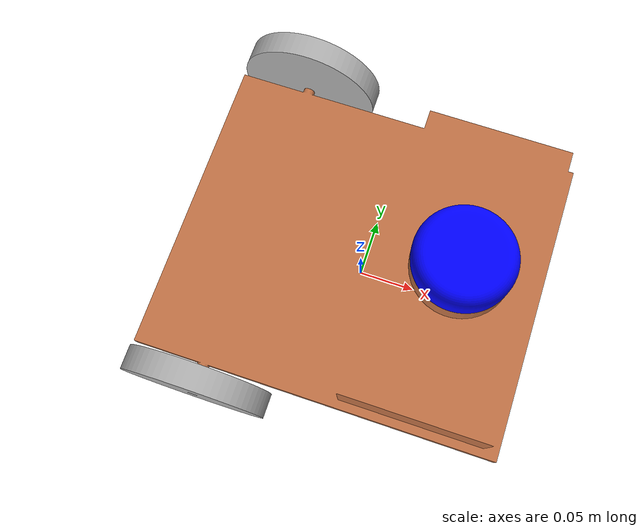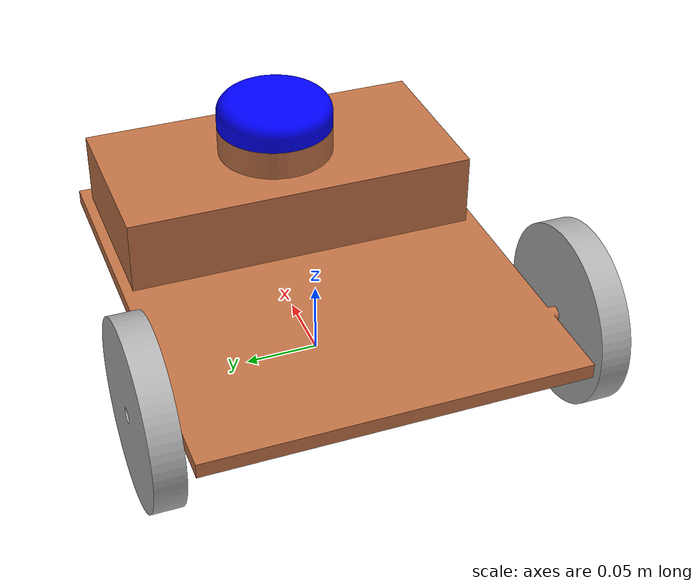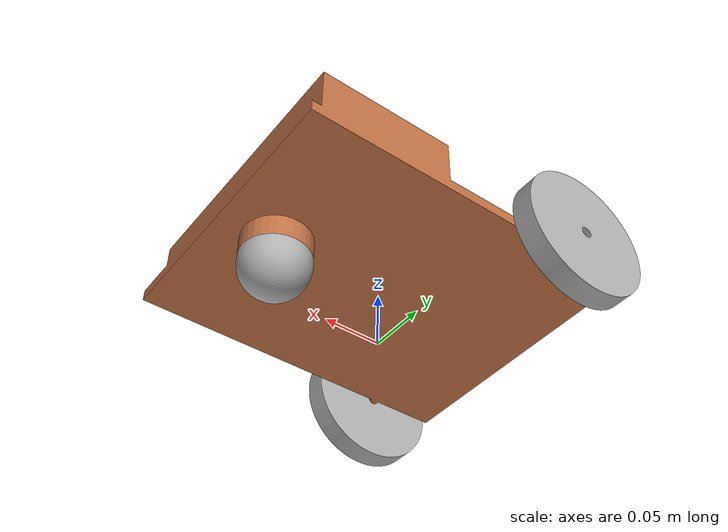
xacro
<?xml version="1.0" ?>
<robot name="mobot" xmlns:xacro="http://www.ros.org/wiki/xacro">

<xacro:include filename="$(find mobot_description)/urdf/materials.xacro" />
<xacro:include filename="$(find mobot_description)/urdf/mobot.trans" />
<xacro:include filename="$(find mobot_description)/urdf/mobot.gazebo" />
<link name="base_link">
  <inertial>
    <origin xyz="0.05430930686087011 3.0673620067212215e-17 0.0806092358098263" rpy="0 0 0"/>
    <mass value="1.2903990247785315"/>
    <inertia ixx="0.006625" iyy="0.006663" izz="0.012159" ixy="0.0" iyz="0.0" ixz="-0.000674"/>
  </inertial>
  <visual>
    <origin xyz="0 0 0" rpy="0 0 0"/>
    <geometry>
      <mesh filename="package://mobot_description/meshes/base_link.stl" scale="0.001 0.001 0.001"/>
    </geometry>
    <material name="wood"/>
  </visual>
  <collision>
    <origin xyz="0 0 0" rpy="0 0 0"/>
    <geometry>
      <mesh filename="package://mobot_description/meshes/base_link.stl" scale="0.001 0.001 0.001"/>
    </geometry>
  </collision>
</link>

<link name="wheel_left_1">
  <inertial>
    <origin xyz="-3.635980405647388e-15 0.010000000000000009 1.3877787807814457e-17" rpy="0 0 0"/>
    <mass value="1.7632974166436104"/>
    <inertia ixx="0.001657" iyy="0.003196" izz="0.001657" ixy="-0.0" iyz="0.0" ixz="-0.0"/>
  </inertial>
  <visual>
    <origin xyz="0.0924 -0.132 -0.06" rpy="0 0 0"/>
    <geometry>
      <mesh filename="package://mobot_description/meshes/wheel_left_1.stl" scale="0.001 0.001 0.001"/>
    </geometry>
    <material name="silver"/>
  </visual>
  <collision>
    <origin xyz="0.0924 -0.132 -0.06" rpy="0 0 0"/>
    <geometry>
      <mesh filename="package://mobot_description/meshes/wheel_left_1.stl" scale="0.001 0.001 0.001"/>
    </geometry>
  </collision>
</link>

<link name="wheel_right_1">
  <inertial>
    <origin xyz="-3.635980405647388e-15 -0.010000000000000009 1.3877787807814457e-17" rpy="0 0 0"/>
    <mass value="1.7632974166436104"/>
    <inertia ixx="0.001657" iyy="0.003196" izz="0.001657" ixy="0.0" iyz="-0.0" ixz="-0.0"/>
  </inertial>
  <visual>
    <origin xyz="0.0924 0.132 -0.06" rpy="0 0 0"/>
    <geometry>
      <mesh filename="package://mobot_description/meshes/wheel_right_1.stl" scale="0.001 0.001 0.001"/>
    </geometry>
    <material name="silver"/>
  </visual>
  <collision>
    <origin xyz="0.0924 0.132 -0.06" rpy="0 0 0"/>
    <geometry>
      <mesh filename="package://mobot_description/meshes/wheel_right_1.stl" scale="0.001 0.001 0.001"/>
    </geometry>
  </collision>
</link>

<link name="caster_1">
  <inertial>
    <origin xyz="0.0 -8.041698750169488e-18 -0.013500000000000012" rpy="0 0 0"/>
    <mass value="0.5548838024402971"/>
    <inertia ixx="0.000146" iyy="0.000146" izz="0.00021" ixy="-0.0" iyz="-0.0" ixz="-0.0"/>
  </inertial>
  <visual>
    <origin xyz="-0.1 -0.0 -0.035" rpy="0 0 0"/>
    <geometry>
      <mesh filename="package://mobot_description/meshes/caster_1.stl" scale="0.001 0.001 0.001"/>
    </geometry>
    <material name="silver"/>
  </visual>
  <collision>
    <origin xyz="-0.1 -0.0 -0.035" rpy="0 0 0"/>
    <geometry>
      <mesh filename="package://mobot_description/meshes/caster_1.stl" scale="0.001 0.001 0.001"/>
    </geometry>
  </collision>
</link>

<link name="lidar">
  <inertial>
    <origin xyz="0.0 -5.9560186459046685e-18 0.009588532305110892" rpy="0 0 0"/>
    <mass value="0.10116493512639839"/>
    <inertia ixx="4.2e-05" iyy="4.2e-05" izz="7.7e-05" ixy="-0.0" iyz="-0.0" ixz="0.0"/>
  </inertial>
  <visual>
    <origin xyz="-0.08 -0.0 -0.135" rpy="0 0 0"/>
    <geometry>
      <mesh filename="package://mobot_description/meshes/lidar_1.stl" scale="0.001 0.001 0.001"/>
    </geometry>
    <material name="blue"/>
  </visual>
  <collision>
    <origin xyz="-0.08 -0.0 -0.135" rpy="0 0 0"/>
    <geometry>
      <mesh filename="package://mobot_description/meshes/lidar_1.stl" scale="0.001 0.001 0.001"/>
    </geometry>
  </collision>
</link>

<joint name="left_motor" type="continuous">
  <origin xyz="-0.0924 0.132 0.06" rpy="0 0 0"/>
  <parent link="base_link"/>
  <child link="wheel_left_1"/>
  <axis xyz="0.0 1.0 0.0"/>
</joint>

<joint name="right_motor" type="continuous">
  <origin xyz="-0.0924 -0.132 0.06" rpy="0 0 0"/>
  <parent link="base_link"/>
  <child link="wheel_right_1"/>
  <axis xyz="0.0 1.0 0.0"/>
</joint>

<joint name="Rigid3" type="fixed">
  <origin xyz="0.1 0.0 0.035" rpy="0 0 0"/>
  <parent link="base_link"/>
  <child link="caster_1"/>
</joint>

<joint name="Rigid4" type="fixed">
  <origin xyz="0.08 0.0 0.135" rpy="0 0 0"/>
  <parent link="base_link"/>
  <child link="lidar"/>
</joint>

</robot>

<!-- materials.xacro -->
<robot name="mobot" xmlns:xacro="http://www.ros.org/wiki/xacro" >

<material name="silver">
  <color rgba="0.700 0.700 0.700 1.000"/>
</material>

<material name="blue">
  <color rgba="0.000 0.000 1.000 1.000"/>
</material>

<material name="wood">
  <color rgba="0.760 0.450 0.275 1.000"/>
</material>

</robot>

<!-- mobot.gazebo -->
<robot name="mobot" xmlns:xacro="http://www.ros.org/wiki/xacro" >

<xacro:property name="body_color" value="Gazebo/Silver" />
<xacro:property name="wood" value="Gazebo/Wood" />
<xacro:property name="lidar_color" value="Gazebo/Blue" />

<gazebo>
  <plugin name="control" filename="libgazebo_ros_control.so"/>
</gazebo>

<gazebo reference="base_link">
  <material>${wood}</material>
  <mu1>0.2</mu1>
  <mu2>0.2</mu2>
  <selfCollide>true</selfCollide>
  <gravity>true</gravity>
</gazebo>

<gazebo reference="wheel_left_1">
  <material>${body_color}</material>
  <mu1>100.0</mu1>
  <mu2>100.0</mu2>
  <selfCollide>true</selfCollide>
</gazebo>

<gazebo reference="wheel_right_1">
  <material>${body_color}</material>
  <mu1>100.0</mu1>
  <mu2>100.0</mu2>
  <selfCollide>true</selfCollide>
</gazebo>

<gazebo reference="caster_1">
  <material>${body_color}</material>
  <mu1>0.001</mu1>
  <mu2>0.001</mu2>
  <selfCollide>true</selfCollide>
</gazebo>

<gazebo reference="lidar">
  <material>${lidar_color}</material>
  <mu1>0.2</mu1>
  <mu2>0.2</mu2>
  <selfCollide>true</selfCollide>
</gazebo>

<gazebo>
  <plugin name="differential_drive_controller" filename="libgazebo_ros_diff_drive.so">

    <!-- Plugin update rate in Hz -->
    <updateRate>20</updateRate>

    <!-- Name of left joint, defaults to `left_joint` -->
    <leftJoint>left_motor</leftJoint>

    <!-- Name of right joint, defaults to `right_joint` -->
    <rightJoint>right_motor</rightJoint>

    <!-- The distance from the center of one wheel to the other, in meters, defaults to 0.34 m -->
    <wheelSeparation>0.284</wheelSeparation>

    <!-- Diameter of the wheels, in meters, defaults to 0.15 m -->
    <wheelDiameter>0.120</wheelDiameter>

    <!-- Wheel acceleration, in rad/s^2, defaults to 0.0 rad/s^2 -->
    <wheelAcceleration>1.0</wheelAcceleration>

    <!-- Maximum torque which the wheels can produce, in Nm, defaults to 5 Nm -->
    <wheelTorque>64</wheelTorque>

    <!-- Topic to receive geometry_msgs/Twist message commands, defaults to `cmd_vel` -->
    <commandTopic>cmd_vel</commandTopic>

    <!-- Topic to publish nav_msgs/Odometry messages, defaults to `odom` -->
    <odometryTopic>odom</odometryTopic>

    <!-- Odometry frame, defaults to `odom` -->
    <odometryFrame>odom</odometryFrame>

    <!-- Robot frame to calculate odometry from, defaults to `base_footprint` -->
    <robotBaseFrame>base_link</robotBaseFrame>

    <!-- Odometry source, 0 for ENCODER, 1 for WORLD, defaults to WORLD -->
    <odometrySource>0</odometrySource>

    <!-- Set to true to publish transforms for the wheel links, defaults to false -->
    <publishWheelTF>false</publishWheelTF>

    <!-- Set to true to publish transforms for the odometry, defaults to true -->
    <publishOdom>false</publishOdom>

    <!-- Set to true to publish sensor_msgs/JointState on /joint_states for the wheel joints, defaults to false -->
    <publishWheelJointState>false</publishWheelJointState>

    <!-- Set to true to swap right and left wheels, defaults to true -->
    <legacyMode>false</legacyMode>
  </plugin>
</gazebo>

<gazebo reference="lidar">
    <sensor type="ray" name="ydlidar">
      <pose>0 0 0 0 0 0</pose>
      <visualize>false</visualize>
      <update_rate>40</update_rate>
      <ray>
        <scan>
          <horizontal>
            <samples>295</samples>
            <resolution>1</resolution>
            <min_angle>-3.14</min_angle>
            <max_angle>3.14</max_angle>
          </horizontal>
        </scan>
        <range>
          <min>0.10</min>
          <max>8.0</max>
          <resolution>0.01</resolution>
        </range>
        <noise>
          <type>gaussian</type>
          <mean>0.0</mean>
          <stddev>0.01</stddev>
        </noise>
      </ray>
      <plugin name="gazebo_ros_head_hokuyo_controller" filename="libgazebo_ros_laser.so">
        <topicName>/scan</topicName>
        <frameName>lidar</frameName>
      </plugin>
    </sensor>
  </gazebo>

</robot>
